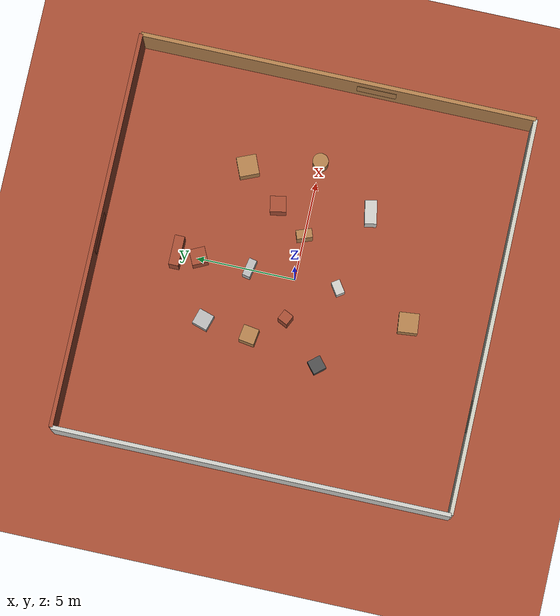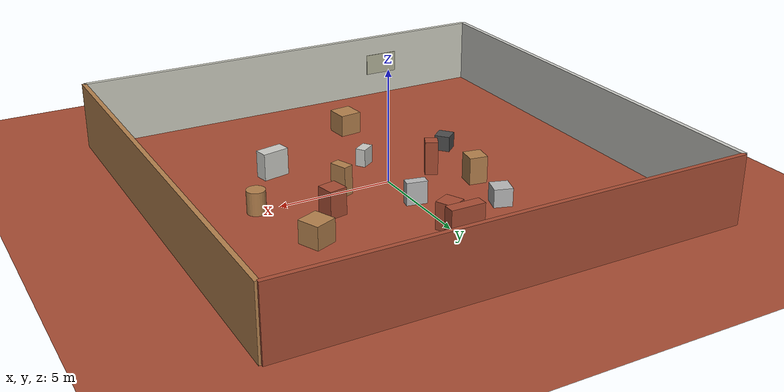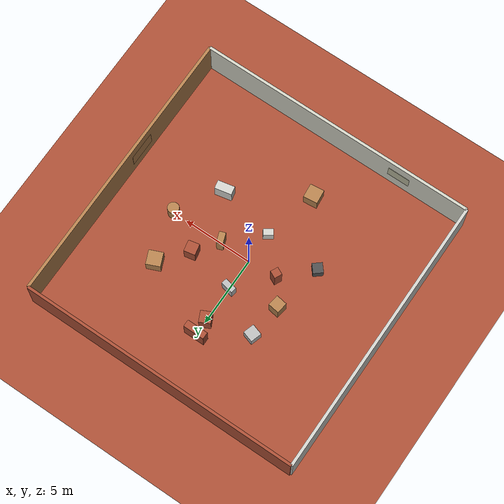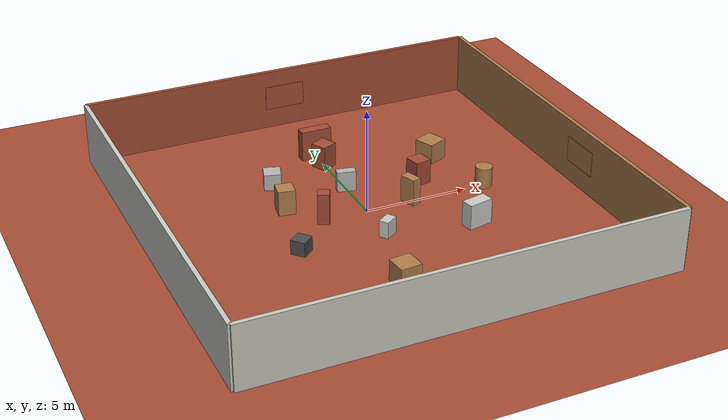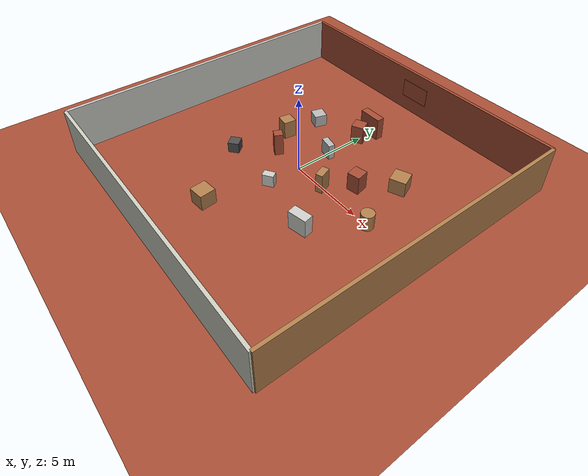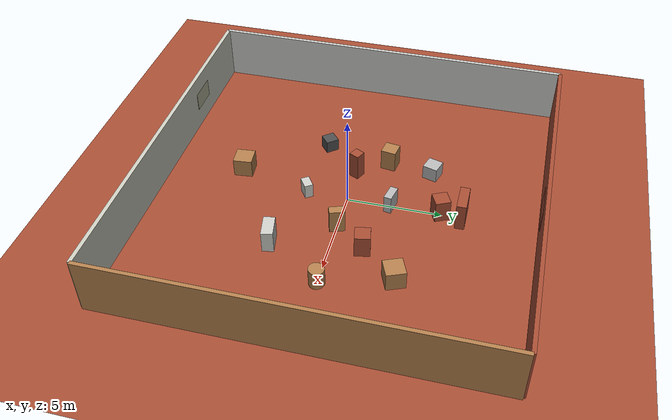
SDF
<?xml version="1.0"?>
<sdf version="1.6">
  <world name="small_room">
    <physics name="default" type="ode">
      <max_step_size>0.001</max_step_size>
      <real_time_factor>1.0</real_time_factor>
      <real_time_update_rate>1000</real_time_update_rate>
    </physics>

    <scene>
      <!-- Kept moderate on purpose: high ambient plus specular blew the
           floor out to white at grazing angles (zero corners). -->
      <ambient>0.4 0.4 0.4 1.0</ambient>
      <background>0.4 0.4 0.4 1.0</background>
      <shadows>false</shadows>
    </scene>

    <light name="sun" type="directional">
      <cast_shadows>false</cast_shadows>
      <pose>5 -5 10 0 0 0</pose>
      <diffuse>0.9 0.9 0.9 1</diffuse>
      <specular>0.0 0.0 0.0 1</specular>
      <direction>-0.4 0.4 -1</direction>
    </light>

    <model name="ground">
      <static>true</static>
      <link name="link">
        <collision name="c"><geometry><plane><normal>0 0 1</normal><size>20 20</size></plane></geometry>
          <surface><friction><ode><mu>0.9</mu><mu2>0.8</mu2></ode></friction></surface>
        </collision>
        <visual name="v"><geometry><plane><normal>0 0 1</normal><size>20 20</size></plane></geometry>
          <material><script><name>Gazebo/Bricks</name><uri>file://media/materials/scripts/gazebo.material</uri></script></material>
        </visual>
      </link>
    </model>

    <!-- 4 walls, each a different texture -->
    <model name="wall_north">
      <static>true</static><pose>0 10 1.5 0 0 0</pose>
      <link name="link">
        <collision name="c"><geometry><box><size>20 0.2 3</size></box></geometry></collision>
        <visual name="v"><geometry><box><size>20 0.2 3</size></box></geometry>
          <material><script><name>Gazebo/Bricks</name><uri>file://media/materials/scripts/gazebo.material</uri></script></material></visual>
      </link>
    </model>
    <model name="wall_south">
      <static>true</static><pose>0 -10 1.5 0 0 0</pose>
      <link name="link">
        <collision name="c"><geometry><box><size>20 0.2 3</size></box></geometry></collision>
        <visual name="v"><geometry><box><size>20 0.2 3</size></box></geometry>
          <material><script><name>Gazebo/PaintedWall</name><uri>file://media/materials/scripts/gazebo.material</uri></script></material></visual>
      </link>
    </model>
    <model name="wall_east">
      <static>true</static><pose>10 0 1.5 0 0 0</pose>
      <link name="link">
        <collision name="c"><geometry><box><size>0.2 20 3</size></box></geometry></collision>
        <visual name="v"><geometry><box><size>0.2 20 3</size></box></geometry>
          <material><script><name>Gazebo/Wood</name><uri>file://media/materials/scripts/gazebo.material</uri></script></material></visual>
      </link>
    </model>
    <model name="wall_west">
      <static>true</static><pose>-10 0 1.5 0 0 0</pose>
      <link name="link">
        <collision name="c"><geometry><box><size>0.2 20 3</size></box></geometry></collision>
        <visual name="v"><geometry><box><size>0.2 20 3</size></box></geometry>
          <material><script><name>Gazebo/CeilingTiled</name><uri>file://media/materials/scripts/gazebo.material</uri></script></material></visual>
      </link>
    </model>

    <!-- scattered obstacle boxes for parallax + features -->
    <!-- NOTE: the auto square loop runs x 0..2, y 0..2, so keep this
         quadrant clear. box1 used to sit at (3,2), 0.4 m off the loop
         corner, and the rover clipped it and toppled. -->
    <model name="box1"><static>true</static><pose>5 3.5 0.5 0 0 0.4</pose>
      <link name="l"><collision name="c"><geometry><box><size>1 1 1</size></box></geometry></collision>
        <visual name="v"><geometry><box><size>1 1 1</size></box></geometry>
          <material><script><name>Gazebo/WoodPallet</name><uri>file://media/materials/scripts/gazebo.material</uri></script></material></visual></link></model>
    <model name="box2"><static>true</static><pose>-3 4 0.4 0 0 -0.3</pose>
      <link name="l"><collision name="c"><geometry><box><size>0.8 0.8 0.8</size></box></geometry></collision>
        <visual name="v"><geometry><box><size>0.8 0.8 0.8</size></box></geometry>
          <material><script><name>Gazebo/Steps</name><uri>file://media/materials/scripts/gazebo.material</uri></script></material></visual></link></model>
    <model name="box3"><static>true</static><pose>4 -3 0.6 0 0 0.2</pose>
      <link name="l"><collision name="c"><geometry><box><size>1.2 0.6 1.2</size></box></geometry></collision>
        <visual name="v"><geometry><box><size>1.2 0.6 1.2</size></box></geometry>
          <material><script><name>Gazebo/CeilingTiled</name><uri>file://media/materials/scripts/gazebo.material</uri></script></material></visual></link></model>
    <model name="box4"><static>true</static><pose>-4 -2 0.35 0 0 0.7</pose>
      <link name="l"><collision name="c"><geometry><box><size>0.7 0.7 0.7</size></box></geometry></collision>
        <visual name="v"><geometry><box><size>0.7 0.7 0.7</size></box></geometry>
          <material><script><name>Gazebo/Road</name><uri>file://media/materials/scripts/gazebo.material</uri></script></material></visual></link></model>
    <model name="box5"><static>true</static><pose>0 6 0.75 0 0 0</pose>
      <link name="l"><collision name="c"><geometry><box><size>1.5 0.5 1.5</size></box></geometry></collision>
        <visual name="v"><geometry><box><size>1.5 0.5 1.5</size></box></geometry>
          <material><script><name>Gazebo/Bricks</name><uri>file://media/materials/scripts/gazebo.material</uri></script></material></visual></link></model>
    <model name="box6"><static>true</static><pose>-1 -6 0.5 0 0 0.1</pose>
      <link name="l"><collision name="c"><geometry><box><size>1 1 1</size></box></geometry></collision>
        <visual name="v"><geometry><box><size>1 1 1</size></box></geometry>
          <material><script><name>Gazebo/Wood</name><uri>file://media/materials/scripts/gazebo.material</uri></script></material></visual></link></model>
    <model name="cyl1"><static>true</static><pose>6 0 0.5 0 0 0</pose>
      <link name="l"><collision name="c"><geometry><cylinder><radius>0.4</radius><length>1.0</length></cylinder></geometry></collision>
        <visual name="v"><geometry><cylinder><radius>0.4</radius><length>1.0</length></cylinder></geometry>
          <material><script><name>Gazebo/WoodPallet</name><uri>file://media/materials/scripts/gazebo.material</uri></script></material></visual></link></model>

    <model name="landmark_east"><static>true</static><pose>2.2 0 0.65 0 0 0.35</pose>
      <link name="l"><collision name="c"><geometry><box><size>0.45 0.8 1.3</size></box></geometry></collision>
        <visual name="v"><geometry><box><size>0.45 0.8 1.3</size></box></geometry>
          <material><script><name>Gazebo/WoodPallet</name><uri>file://media/materials/scripts/gazebo.material</uri></script></material></visual></link></model>
    <model name="landmark_north"><static>true</static><pose>0 2.3 0.5 0 0 -0.2</pose>
      <link name="l"><collision name="c"><geometry><box><size>0.9 0.4 1.0</size></box></geometry></collision>
        <visual name="v"><geometry><box><size>0.9 0.4 1.0</size></box></geometry>
          <material><script><name>Gazebo/Steps</name><uri>file://media/materials/scripts/gazebo.material</uri></script></material></visual></link></model>
    <model name="landmark_west"><static>true</static><pose>-2.1 0 0.75 0 0 -0.45</pose>
      <link name="l"><collision name="c"><geometry><box><size>0.55 0.55 1.5</size></box></geometry></collision>
        <visual name="v"><geometry><box><size>0.55 0.55 1.5</size></box></geometry>
          <material><script><name>Gazebo/Bricks</name><uri>file://media/materials/scripts/gazebo.material</uri></script></material></visual></link></model>
    <model name="landmark_south"><static>true</static><pose>0 -2.2 0.4 0 0 0.6</pose>
      <link name="l"><collision name="c"><geometry><box><size>0.7 0.45 0.8</size></box></geometry></collision>
        <visual name="v"><geometry><box><size>0.7 0.45 0.8</size></box></geometry>
          <material><script><name>Gazebo/CeilingTiled</name><uri>file://media/materials/scripts/gazebo.material</uri></script></material></visual></link></model>

    <model name="pillar1"><static>true</static><pose>3.4 1.6 0.6 0 0 0.2</pose>
      <link name="l"><collision name="c"><geometry><box><size>0.8 0.8 1.2</size></box></geometry></collision>
        <visual name="v"><geometry><box><size>0.8 0.8 1.2</size></box></geometry>
          <material><script><name>Gazebo/Bricks</name><uri>file://media/materials/scripts/gazebo.material</uri></script></material></visual></link></model>
    <model name="pillar2"><static>true</static><pose>-3.3 1.6 0.6 0 0 -0.15</pose>
      <link name="l"><collision name="c"><geometry><box><size>0.8 0.8 1.2</size></box></geometry></collision>
        <visual name="v"><geometry><box><size>0.8 0.8 1.2</size></box></geometry>
          <material><script><name>Gazebo/Wood</name><uri>file://media/materials/scripts/gazebo.material</uri></script></material></visual></link></model>
    <model name="pillar3"><static>true</static><pose>0 4.9 0.6 0 0 0.45</pose>
      <link name="l"><collision name="c"><geometry><box><size>0.8 0.8 1.2</size></box></geometry></collision>
        <visual name="v"><geometry><box><size>0.8 0.8 1.2</size></box></geometry>
          <material><script><name>Gazebo/Bricks</name><uri>file://media/materials/scripts/gazebo.material</uri></script></material></visual></link></model>

    <!-- high-contrast poster boards on walls for visual SLAM -->
    <model name="poster1"><static>true</static><pose>0 9.88 1.6 0 0 0</pose>
      <link name="l"><visual name="v"><geometry><box><size>2.0 0.02 1.2</size></box></geometry>
        <material><script><name>Gazebo/Bricks</name><uri>file://media/materials/scripts/gazebo.material</uri></script></material></visual></link></model>
    <model name="poster2"><static>true</static><pose>9.88 -2 1.6 0 0 1.5708</pose>
      <link name="l"><visual name="v"><geometry><box><size>2.0 0.02 1.2</size></box></geometry>
        <material><script><name>Gazebo/WoodPallet</name><uri>file://media/materials/scripts/gazebo.material</uri></script></material></visual></link></model>
    <model name="poster3"><static>true</static><pose>-5 -9.88 1.6 0 0 0</pose>
      <link name="l"><visual name="v"><geometry><box><size>1.6 0.02 1.0</size></box></geometry>
        <material><script><name>Gazebo/Residential</name><uri>file://media/materials/scripts/gazebo.material</uri></script></material></visual></link></model>

    <plugin name="gazebo_ros_state" filename="libgazebo_ros_state.so">
    </plugin>
  </world>
</sdf>
